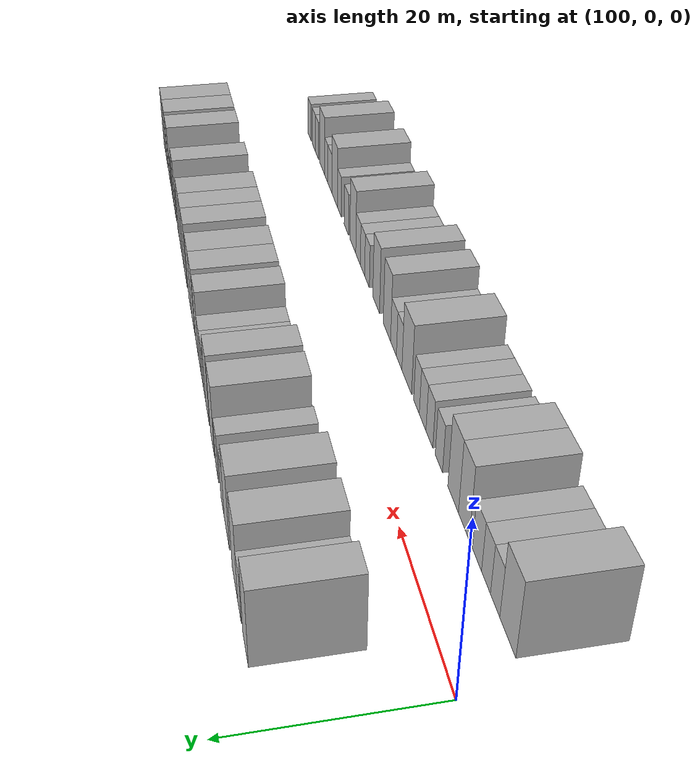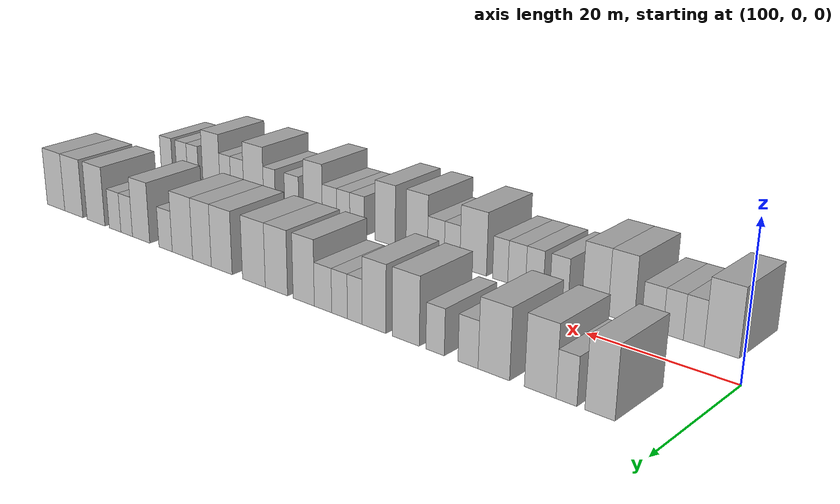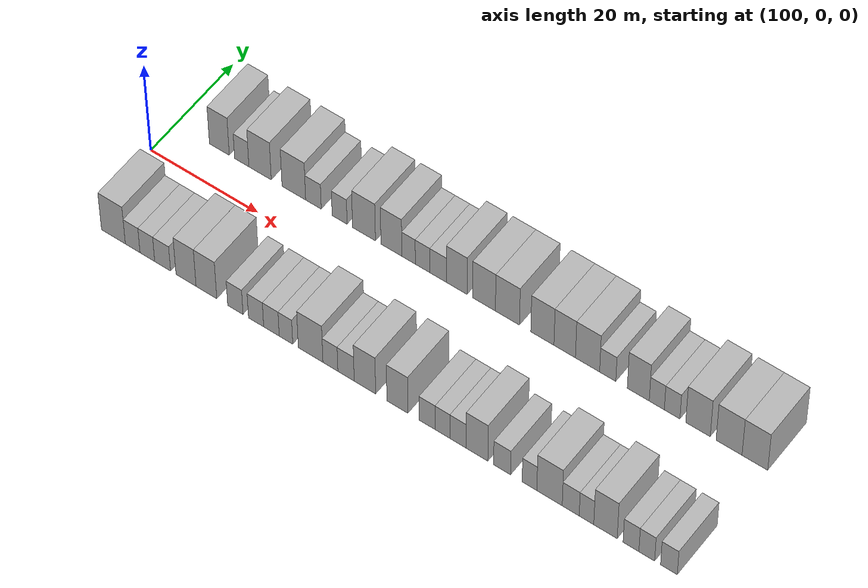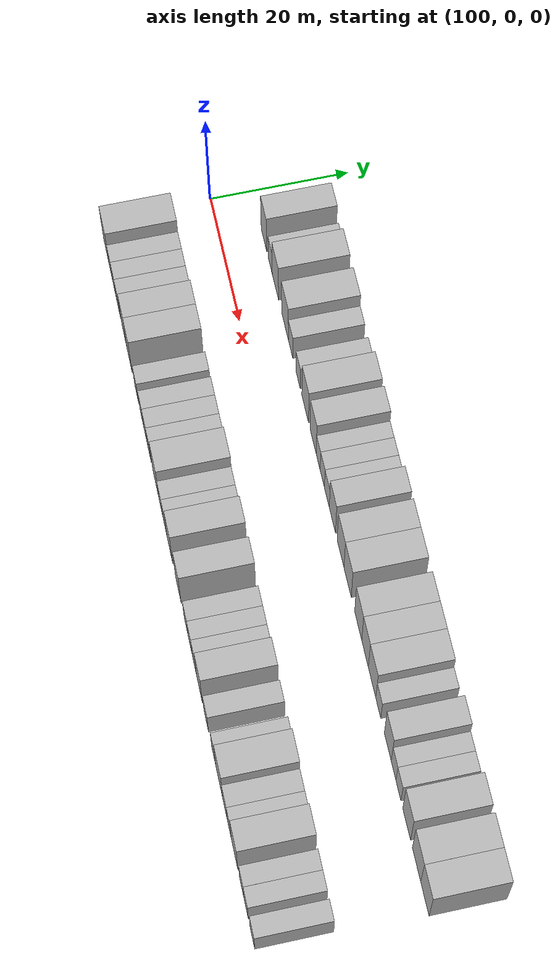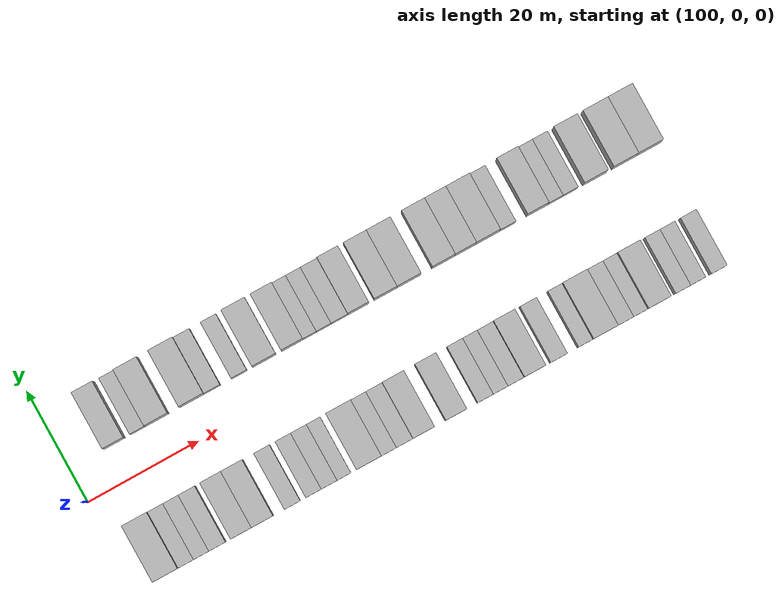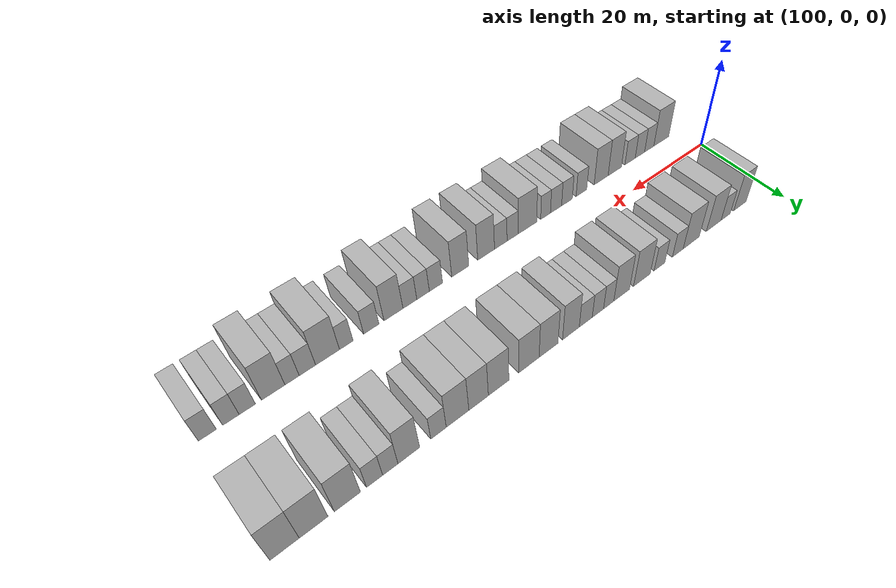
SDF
<sdf version="1.6">
 <world name="default">
  <model name="building_26">
   <static>1</static>
   <pose>108.2186 11.0000 0 0.000000 0.000000 1.570796</pose>
   <link name="link">
    <pose>0 0 4.50 0 0 0</pose>
    <collision name="collision"><geometry><box><size>10.0000 3.7321 9.0000</size></box></geometry></collision>
    <visual name="visual">
     <cast_shadows>0</cast_shadows>
     <geometry><box><size>10.0000 3.7321 9.0000</size></box></geometry>
     <material>
      <script>
       <uri>model://HANNAS_wall/materials/scripts</uri>
       <uri>model://HANNAS_wall/materials/textures</uri>
       <name>vrc/HANNAS_wall</name>
      </script>
     </material>
    </visual>
   </link>
  </model>
  <model name="building_27">
   <static>1</static>
   <pose>112.4197 11.0000 0 0.000000 0.000000 1.570796</pose>
   <link name="link">
    <pose>0 0 3.00 0 0 0</pose>
    <collision name="collision"><geometry><box><size>10.0000 2.6702 6.0000</size></box></geometry></collision>
    <visual name="visual">
     <cast_shadows>0</cast_shadows>
     <geometry><box><size>10.0000 2.6702 6.0000</size></box></geometry>
     <material>
      <script>
       <uri>model://HANNAS_wall/materials/scripts</uri>
       <uri>model://HANNAS_wall/materials/textures</uri>
       <name>vrc/HANNAS_wall</name>
      </script>
     </material>
    </visual>
   </link>
  </model>
  <model name="building_28">
   <static>1</static>
   <pose>115.8451 11.0000 0 0.000000 0.000000 1.570796</pose>
   <link name="link">
    <pose>0 0 4.50 0 0 0</pose>
    <collision name="collision"><geometry><box><size>10.0000 4.1805 9.0000</size></box></geometry></collision>
    <visual name="visual">
     <cast_shadows>0</cast_shadows>
     <geometry><box><size>10.0000 4.1805 9.0000</size></box></geometry>
     <material>
      <script>
       <uri>model://HANNAS_wall/materials/scripts</uri>
       <uri>model://HANNAS_wall/materials/textures</uri>
       <name>vrc/HANNAS_wall</name>
      </script>
     </material>
    </visual>
   </link>
  </model>
  <model name="building_29">
   <static>1</static>
   <pose>122.1310 11.0000 0 0.000000 0.000000 1.570796</pose>
   <link name="link">
    <pose>0 0 4.50 0 0 0</pose>
    <collision name="collision"><geometry><box><size>10.0000 4.3913 9.0000</size></box></geometry></collision>
    <visual name="visual">
     <cast_shadows>0</cast_shadows>
     <geometry><box><size>10.0000 4.3913 9.0000</size></box></geometry>
     <material>
      <script>
       <uri>model://HANNAS_wall/materials/scripts</uri>
       <uri>model://HANNAS_wall/materials/textures</uri>
       <name>vrc/HANNAS_wall</name>
      </script>
     </material>
    </visual>
   </link>
  </model>
  <model name="building_30">
   <static>1</static>
   <pose>125.7709 11.0000 0 0.000000 0.000000 1.570796</pose>
   <link name="link">
    <pose>0 0 3.00 0 0 0</pose>
    <collision name="collision"><geometry><box><size>10.0000 2.8885 6.0000</size></box></geometry></collision>
    <visual name="visual">
     <cast_shadows>0</cast_shadows>
     <geometry><box><size>10.0000 2.8885 6.0000</size></box></geometry>
     <material>
      <script>
       <uri>model://HANNAS_wall/materials/scripts</uri>
       <uri>model://HANNAS_wall/materials/textures</uri>
       <name>vrc/HANNAS_wall</name>
      </script>
     </material>
    </visual>
   </link>
  </model>
  <model name="building_31">
   <static>1</static>
   <pose>130.5953 11.0000 0 0.000000 0.000000 1.570796</pose>
   <link name="link">
    <pose>0 0 3.00 0 0 0</pose>
    <collision name="collision"><geometry><box><size>10.0000 2.7602 6.0000</size></box></geometry></collision>
    <visual name="visual">
     <cast_shadows>0</cast_shadows>
     <geometry><box><size>10.0000 2.7602 6.0000</size></box></geometry>
     <material>
      <script>
       <uri>model://HANNAS_wall/materials/scripts</uri>
       <uri>model://HANNAS_wall/materials/textures</uri>
       <name>vrc/HANNAS_wall</name>
      </script>
     </material>
    </visual>
   </link>
  </model>
  <model name="building_32">
   <static>1</static>
   <pose>135.0744 11.0000 0 0.000000 0.000000 1.570796</pose>
   <link name="link">
    <pose>0 0 4.50 0 0 0</pose>
    <collision name="collision"><geometry><box><size>10.0000 4.1980 9.0000</size></box></geometry></collision>
    <visual name="visual">
     <cast_shadows>0</cast_shadows>
     <geometry><box><size>10.0000 4.1980 9.0000</size></box></geometry>
     <material>
      <script>
       <uri>model://HANNAS_wall/materials/scripts</uri>
       <uri>model://HANNAS_wall/materials/textures</uri>
       <name>vrc/HANNAS_wall</name>
      </script>
     </material>
    </visual>
   </link>
  </model>
  <model name="building_33">
   <static>1</static>
   <pose>140.0849 11.0000 0 0.000000 0.000000 1.570796</pose>
   <link name="link">
    <pose>0 0 4.50 0 0 0</pose>
    <collision name="collision"><geometry><box><size>10.0000 3.8230 9.0000</size></box></geometry></collision>
    <visual name="visual">
     <cast_shadows>0</cast_shadows>
     <geometry><box><size>10.0000 3.8230 9.0000</size></box></geometry>
     <material>
      <script>
       <uri>model://HANNAS_wall/materials/scripts</uri>
       <uri>model://HANNAS_wall/materials/textures</uri>
       <name>vrc/HANNAS_wall</name>
      </script>
     </material>
    </visual>
   </link>
  </model>
  <model name="building_34">
   <static>1</static>
   <pose>143.2163 11.0000 0 0.000000 0.000000 1.570796</pose>
   <link name="link">
    <pose>0 0 3.00 0 0 0</pose>
    <collision name="collision"><geometry><box><size>10.0000 2.4398 6.0000</size></box></geometry></collision>
    <visual name="visual">
     <cast_shadows>0</cast_shadows>
     <geometry><box><size>10.0000 2.4398 6.0000</size></box></geometry>
     <material>
      <script>
       <uri>model://HANNAS_wall/materials/scripts</uri>
       <uri>model://HANNAS_wall/materials/textures</uri>
       <name>vrc/HANNAS_wall</name>
      </script>
     </material>
    </visual>
   </link>
  </model>
  <model name="building_35">
   <static>1</static>
   <pose>145.7542 11.0000 0 0.000000 0.000000 1.570796</pose>
   <link name="link">
    <pose>0 0 3.00 0 0 0</pose>
    <collision name="collision"><geometry><box><size>10.0000 2.6360 6.0000</size></box></geometry></collision>
    <visual name="visual">
     <cast_shadows>0</cast_shadows>
     <geometry><box><size>10.0000 2.6360 6.0000</size></box></geometry>
     <material>
      <script>
       <uri>model://HANNAS_wall/materials/scripts</uri>
       <uri>model://HANNAS_wall/materials/textures</uri>
       <name>vrc/HANNAS_wall</name>
      </script>
     </material>
    </visual>
   </link>
  </model>
  <model name="building_36">
   <static>1</static>
   <pose>148.5625 11.0000 0 0.000000 0.000000 1.570796</pose>
   <link name="link">
    <pose>0 0 3.00 0 0 0</pose>
    <collision name="collision"><geometry><box><size>10.0000 2.9808 6.0000</size></box></geometry></collision>
    <visual name="visual">
     <cast_shadows>0</cast_shadows>
     <geometry><box><size>10.0000 2.9808 6.0000</size></box></geometry>
     <material>
      <script>
       <uri>model://HANNAS_wall/materials/scripts</uri>
       <uri>model://HANNAS_wall/materials/textures</uri>
       <name>vrc/HANNAS_wall</name>
      </script>
     </material>
    </visual>
   </link>
  </model>
  <model name="building_37">
   <static>1</static>
   <pose>151.9201 11.0000 0 0.000000 0.000000 1.570796</pose>
   <link name="link">
    <pose>0 0 4.50 0 0 0</pose>
    <collision name="collision"><geometry><box><size>10.0000 3.7343 9.0000</size></box></geometry></collision>
    <visual name="visual">
     <cast_shadows>0</cast_shadows>
     <geometry><box><size>10.0000 3.7343 9.0000</size></box></geometry>
     <material>
      <script>
       <uri>model://HANNAS_wall/materials/scripts</uri>
       <uri>model://HANNAS_wall/materials/textures</uri>
       <name>vrc/HANNAS_wall</name>
      </script>
     </material>
    </visual>
   </link>
  </model>
  <model name="building_38">
   <static>1</static>
   <pose>156.8226 11.0000 0 0.000000 0.000000 1.570796</pose>
   <link name="link">
    <pose>0 0 4.50 0 0 0</pose>
    <collision name="collision"><geometry><box><size>10.0000 4.0708 9.0000</size></box></geometry></collision>
    <visual name="visual">
     <cast_shadows>0</cast_shadows>
     <geometry><box><size>10.0000 4.0708 9.0000</size></box></geometry>
     <material>
      <script>
       <uri>model://HANNAS_wall/materials/scripts</uri>
       <uri>model://HANNAS_wall/materials/textures</uri>
       <name>vrc/HANNAS_wall</name>
      </script>
     </material>
    </visual>
   </link>
  </model>
  <model name="building_39">
   <static>1</static>
   <pose>161.0073 11.0000 0 0.000000 0.000000 1.570796</pose>
   <link name="link">
    <pose>0 0 4.50 0 0 0</pose>
    <collision name="collision"><geometry><box><size>10.0000 4.2986 9.0000</size></box></geometry></collision>
    <visual name="visual">
     <cast_shadows>0</cast_shadows>
     <geometry><box><size>10.0000 4.2986 9.0000</size></box></geometry>
     <material>
      <script>
       <uri>model://HANNAS_wall/materials/scripts</uri>
       <uri>model://HANNAS_wall/materials/textures</uri>
       <name>vrc/HANNAS_wall</name>
      </script>
     </material>
    </visual>
   </link>
  </model>
  <model name="building_40">
   <static>1</static>
   <pose>167.2111 11.0000 0 0.000000 0.000000 1.570796</pose>
   <link name="link">
    <pose>0 0 4.50 0 0 0</pose>
    <collision name="collision"><geometry><box><size>10.0000 4.1090 9.0000</size></box></geometry></collision>
    <visual name="visual">
     <cast_shadows>0</cast_shadows>
     <geometry><box><size>10.0000 4.1090 9.0000</size></box></geometry>
     <material>
      <script>
       <uri>model://HANNAS_wall/materials/scripts</uri>
       <uri>model://HANNAS_wall/materials/textures</uri>
       <name>vrc/HANNAS_wall</name>
      </script>
     </material>
    </visual>
   </link>
  </model>
  <model name="building_41">
   <static>1</static>
   <pose>171.1604 11.0000 0 0.000000 0.000000 1.570796</pose>
   <link name="link">
    <pose>0 0 4.50 0 0 0</pose>
    <collision name="collision"><geometry><box><size>10.0000 3.7896 9.0000</size></box></geometry></collision>
    <visual name="visual">
     <cast_shadows>0</cast_shadows>
     <geometry><box><size>10.0000 3.7896 9.0000</size></box></geometry>
     <material>
      <script>
       <uri>model://HANNAS_wall/materials/scripts</uri>
       <uri>model://HANNAS_wall/materials/textures</uri>
       <name>vrc/HANNAS_wall</name>
      </script>
     </material>
    </visual>
   </link>
  </model>
  <model name="building_42">
   <static>1</static>
   <pose>175.1834 11.0000 0 0.000000 0.000000 1.570796</pose>
   <link name="link">
    <pose>0 0 4.50 0 0 0</pose>
    <collision name="collision"><geometry><box><size>10.0000 4.2564 9.0000</size></box></geometry></collision>
    <visual name="visual">
     <cast_shadows>0</cast_shadows>
     <geometry><box><size>10.0000 4.2564 9.0000</size></box></geometry>
     <material>
      <script>
       <uri>model://HANNAS_wall/materials/scripts</uri>
       <uri>model://HANNAS_wall/materials/textures</uri>
       <name>vrc/HANNAS_wall</name>
      </script>
     </material>
    </visual>
   </link>
  </model>
  <model name="building_43">
   <static>1</static>
   <pose>178.7309 11.0000 0 0.000000 0.000000 1.570796</pose>
   <link name="link">
    <pose>0 0 3.00 0 0 0</pose>
    <collision name="collision"><geometry><box><size>10.0000 2.8384 6.0000</size></box></geometry></collision>
    <visual name="visual">
     <cast_shadows>0</cast_shadows>
     <geometry><box><size>10.0000 2.8384 6.0000</size></box></geometry>
     <material>
      <script>
       <uri>model://HANNAS_wall/materials/scripts</uri>
       <uri>model://HANNAS_wall/materials/textures</uri>
       <name>vrc/HANNAS_wall</name>
      </script>
     </material>
    </visual>
   </link>
  </model>
  <model name="building_44">
   <static>1</static>
   <pose>184.0636 11.0000 0 0.000000 0.000000 1.570796</pose>
   <link name="link">
    <pose>0 0 4.50 0 0 0</pose>
    <collision name="collision"><geometry><box><size>10.0000 3.8270 9.0000</size></box></geometry></collision>
    <visual name="visual">
     <cast_shadows>0</cast_shadows>
     <geometry><box><size>10.0000 3.8270 9.0000</size></box></geometry>
     <material>
      <script>
       <uri>model://HANNAS_wall/materials/scripts</uri>
       <uri>model://HANNAS_wall/materials/textures</uri>
       <name>vrc/HANNAS_wall</name>
      </script>
     </material>
    </visual>
   </link>
  </model>
  <model name="building_45">
   <static>1</static>
   <pose>187.2848 11.0000 0 0.000000 0.000000 1.570796</pose>
   <link name="link">
    <pose>0 0 3.00 0 0 0</pose>
    <collision name="collision"><geometry><box><size>10.0000 2.6154 6.0000</size></box></geometry></collision>
    <visual name="visual">
     <cast_shadows>0</cast_shadows>
     <geometry><box><size>10.0000 2.6154 6.0000</size></box></geometry>
     <material>
      <script>
       <uri>model://HANNAS_wall/materials/scripts</uri>
       <uri>model://HANNAS_wall/materials/textures</uri>
       <name>vrc/HANNAS_wall</name>
      </script>
     </material>
    </visual>
   </link>
  </model>
  <model name="building_46">
   <static>1</static>
   <pose>189.9459 11.0000 0 0.000000 0.000000 1.570796</pose>
   <link name="link">
    <pose>0 0 3.00 0 0 0</pose>
    <collision name="collision"><geometry><box><size>10.0000 2.7069 6.0000</size></box></geometry></collision>
    <visual name="visual">
     <cast_shadows>0</cast_shadows>
     <geometry><box><size>10.0000 2.7069 6.0000</size></box></geometry>
     <material>
      <script>
       <uri>model://HANNAS_wall/materials/scripts</uri>
       <uri>model://HANNAS_wall/materials/textures</uri>
       <name>vrc/HANNAS_wall</name>
      </script>
     </material>
    </visual>
   </link>
  </model>
  <model name="building_47">
   <static>1</static>
   <pose>194.4115 11.0000 0 0.000000 0.000000 1.570796</pose>
   <link name="link">
    <pose>0 0 4.50 0 0 0</pose>
    <collision name="collision"><geometry><box><size>10.0000 4.2243 9.0000</size></box></geometry></collision>
    <visual name="visual">
     <cast_shadows>0</cast_shadows>
     <geometry><box><size>10.0000 4.2243 9.0000</size></box></geometry>
     <material>
      <script>
       <uri>model://HANNAS_wall/materials/scripts</uri>
       <uri>model://HANNAS_wall/materials/textures</uri>
       <name>vrc/HANNAS_wall</name>
      </script>
     </material>
    </visual>
   </link>
  </model>
  <model name="building_48">
   <static>1</static>
   <pose>199.7495 11.0000 0 0.000000 0.000000 1.570796</pose>
   <link name="link">
    <pose>0 0 4.50 0 0 0</pose>
    <collision name="collision"><geometry><box><size>10.0000 4.4517 9.0000</size></box></geometry></collision>
    <visual name="visual">
     <cast_shadows>0</cast_shadows>
     <geometry><box><size>10.0000 4.4517 9.0000</size></box></geometry>
     <material>
      <script>
       <uri>model://HANNAS_wall/materials/scripts</uri>
       <uri>model://HANNAS_wall/materials/textures</uri>
       <name>vrc/HANNAS_wall</name>
      </script>
     </material>
    </visual>
   </link>
  </model>
  <model name="building_49">
   <static>1</static>
   <pose>204.1674 11.0000 0 0.000000 0.000000 1.570796</pose>
   <link name="link">
    <pose>0 0 4.50 0 0 0</pose>
    <collision name="collision"><geometry><box><size>10.0000 4.3839 9.0000</size></box></geometry></collision>
    <visual name="visual">
     <cast_shadows>0</cast_shadows>
     <geometry><box><size>10.0000 4.3839 9.0000</size></box></geometry>
     <material>
      <script>
       <uri>model://HANNAS_wall/materials/scripts</uri>
       <uri>model://HANNAS_wall/materials/textures</uri>
       <name>vrc/HANNAS_wall</name>
      </script>
     </material>
    </visual>
   </link>
  </model>
  <model name="building_76">
   <static>1</static>
   <pose>105.4344 -11.0000 0 0.000000 0.000000 1.570796</pose>
   <link name="link">
    <pose>0 0 4.50 0 0 0</pose>
    <collision name="collision"><geometry><box><size>10.0000 4.4679 9.0000</size></box></geometry></collision>
    <visual name="visual">
     <cast_shadows>0</cast_shadows>
     <geometry><box><size>10.0000 4.4679 9.0000</size></box></geometry>
     <material>
      <script>
       <uri>model://HANNAS_wall/materials/scripts</uri>
       <uri>model://HANNAS_wall/materials/textures</uri>
       <name>vrc/HANNAS_wall</name>
      </script>
     </material>
    </visual>
   </link>
  </model>
  <model name="building_77">
   <static>1</static>
   <pose>109.0400 -11.0000 0 0.000000 0.000000 1.570796</pose>
   <link name="link">
    <pose>0 0 3.00 0 0 0</pose>
    <collision name="collision"><geometry><box><size>10.0000 2.7435 6.0000</size></box></geometry></collision>
    <visual name="visual">
     <cast_shadows>0</cast_shadows>
     <geometry><box><size>10.0000 2.7435 6.0000</size></box></geometry>
     <material>
      <script>
       <uri>model://HANNAS_wall/materials/scripts</uri>
       <uri>model://HANNAS_wall/materials/textures</uri>
       <name>vrc/HANNAS_wall</name>
      </script>
     </material>
    </visual>
   </link>
  </model>
  <model name="building_78">
   <static>1</static>
   <pose>111.7783 -11.0000 0 0.000000 0.000000 1.570796</pose>
   <link name="link">
    <pose>0 0 3.00 0 0 0</pose>
    <collision name="collision"><geometry><box><size>10.0000 2.7330 6.0000</size></box></geometry></collision>
    <visual name="visual">
     <cast_shadows>0</cast_shadows>
     <geometry><box><size>10.0000 2.7330 6.0000</size></box></geometry>
     <material>
      <script>
       <uri>model://HANNAS_wall/materials/scripts</uri>
       <uri>model://HANNAS_wall/materials/textures</uri>
       <name>vrc/HANNAS_wall</name>
      </script>
     </material>
    </visual>
   </link>
  </model>
  <model name="building_79">
   <static>1</static>
   <pose>114.6208 -11.0000 0 0.000000 0.000000 1.570796</pose>
   <link name="link">
    <pose>0 0 3.00 0 0 0</pose>
    <collision name="collision"><geometry><box><size>10.0000 2.9521 6.0000</size></box></geometry></collision>
    <visual name="visual">
     <cast_shadows>0</cast_shadows>
     <geometry><box><size>10.0000 2.9521 6.0000</size></box></geometry>
     <material>
      <script>
       <uri>model://HANNAS_wall/materials/scripts</uri>
       <uri>model://HANNAS_wall/materials/textures</uri>
       <name>vrc/HANNAS_wall</name>
      </script>
     </material>
    </visual>
   </link>
  </model>
  <model name="building_80">
   <static>1</static>
   <pose>118.9534 -11.0000 0 0.000000 0.000000 1.570796</pose>
   <link name="link">
    <pose>0 0 4.50 0 0 0</pose>
    <collision name="collision"><geometry><box><size>10.0000 3.7133 9.0000</size></box></geometry></collision>
    <visual name="visual">
     <cast_shadows>0</cast_shadows>
     <geometry><box><size>10.0000 3.7133 9.0000</size></box></geometry>
     <material>
      <script>
       <uri>model://HANNAS_wall/materials/scripts</uri>
       <uri>model://HANNAS_wall/materials/textures</uri>
       <name>vrc/HANNAS_wall</name>
      </script>
     </material>
    </visual>
   </link>
  </model>
  <model name="building_81">
   <static>1</static>
   <pose>122.7202 -11.0000 0 0.000000 0.000000 1.570796</pose>
   <link name="link">
    <pose>0 0 4.50 0 0 0</pose>
    <collision name="collision"><geometry><box><size>10.0000 3.8201 9.0000</size></box></geometry></collision>
    <visual name="visual">
     <cast_shadows>0</cast_shadows>
     <geometry><box><size>10.0000 3.8201 9.0000</size></box></geometry>
     <material>
      <script>
       <uri>model://HANNAS_wall/materials/scripts</uri>
       <uri>model://HANNAS_wall/materials/textures</uri>
       <name>vrc/HANNAS_wall</name>
      </script>
     </material>
    </visual>
   </link>
  </model>
  <model name="building_82">
   <static>1</static>
   <pose>128.0372 -11.0000 0 0.000000 0.000000 1.570796</pose>
   <link name="link">
    <pose>0 0 3.00 0 0 0</pose>
    <collision name="collision"><geometry><box><size>10.0000 2.8138 6.0000</size></box></geometry></collision>
    <visual name="visual">
     <cast_shadows>0</cast_shadows>
     <geometry><box><size>10.0000 2.8138 6.0000</size></box></geometry>
     <material>
      <script>
       <uri>model://HANNAS_wall/materials/scripts</uri>
       <uri>model://HANNAS_wall/materials/textures</uri>
       <name>vrc/HANNAS_wall</name>
      </script>
     </material>
    </visual>
   </link>
  </model>
  <model name="building_83">
   <static>1</static>
   <pose>131.8249 -11.0000 0 0.000000 0.000000 1.570796</pose>
   <link name="link">
    <pose>0 0 3.00 0 0 0</pose>
    <collision name="collision"><geometry><box><size>10.0000 2.7617 6.0000</size></box></geometry></collision>
    <visual name="visual">
     <cast_shadows>0</cast_shadows>
     <geometry><box><size>10.0000 2.7617 6.0000</size></box></geometry>
     <material>
      <script>
       <uri>model://HANNAS_wall/materials/scripts</uri>
       <uri>model://HANNAS_wall/materials/textures</uri>
       <name>vrc/HANNAS_wall</name>
      </script>
     </material>
    </visual>
   </link>
  </model>
  <model name="building_84">
   <static>1</static>
   <pose>134.6211 -11.0000 0 0.000000 0.000000 1.570796</pose>
   <link name="link">
    <pose>0 0 3.00 0 0 0</pose>
    <collision name="collision"><geometry><box><size>10.0000 2.8305 6.0000</size></box></geometry></collision>
    <visual name="visual">
     <cast_shadows>0</cast_shadows>
     <geometry><box><size>10.0000 2.8305 6.0000</size></box></geometry>
     <material>
      <script>
       <uri>model://HANNAS_wall/materials/scripts</uri>
       <uri>model://HANNAS_wall/materials/textures</uri>
       <name>vrc/HANNAS_wall</name>
      </script>
     </material>
    </visual>
   </link>
  </model>
  <model name="building_85">
   <static>1</static>
   <pose>137.2659 -11.0000 0 0.000000 0.000000 1.570796</pose>
   <link name="link">
    <pose>0 0 3.00 0 0 0</pose>
    <collision name="collision"><geometry><box><size>10.0000 2.4590 6.0000</size></box></geometry></collision>
    <visual name="visual">
     <cast_shadows>0</cast_shadows>
     <geometry><box><size>10.0000 2.4590 6.0000</size></box></geometry>
     <material>
      <script>
       <uri>model://HANNAS_wall/materials/scripts</uri>
       <uri>model://HANNAS_wall/materials/textures</uri>
       <name>vrc/HANNAS_wall</name>
      </script>
     </material>
    </visual>
   </link>
  </model>
  <model name="building_86">
   <static>1</static>
   <pose>141.7210 -11.0000 0 0.000000 0.000000 1.570796</pose>
   <link name="link">
    <pose>0 0 4.50 0 0 0</pose>
    <collision name="collision"><geometry><box><size>10.0000 4.4512 9.0000</size></box></geometry></collision>
    <visual name="visual">
     <cast_shadows>0</cast_shadows>
     <geometry><box><size>10.0000 4.4512 9.0000</size></box></geometry>
     <material>
      <script>
       <uri>model://HANNAS_wall/materials/scripts</uri>
       <uri>model://HANNAS_wall/materials/textures</uri>
       <name>vrc/HANNAS_wall</name>
      </script>
     </material>
    </visual>
   </link>
  </model>
  <model name="building_87">
   <static>1</static>
   <pose>145.2903 -11.0000 0 0.000000 0.000000 1.570796</pose>
   <link name="link">
    <pose>0 0 3.00 0 0 0</pose>
    <collision name="collision"><geometry><box><size>10.0000 2.6874 6.0000</size></box></geometry></collision>
    <visual name="visual">
     <cast_shadows>0</cast_shadows>
     <geometry><box><size>10.0000 2.6874 6.0000</size></box></geometry>
     <material>
      <script>
       <uri>model://HANNAS_wall/materials/scripts</uri>
       <uri>model://HANNAS_wall/materials/textures</uri>
       <name>vrc/HANNAS_wall</name>
      </script>
     </material>
    </visual>
   </link>
  </model>
  <model name="building_88">
   <static>1</static>
   <pose>148.1000 -11.0000 0 0.000000 0.000000 1.570796</pose>
   <link name="link">
    <pose>0 0 3.00 0 0 0</pose>
    <collision name="collision"><geometry><box><size>10.0000 2.9320 6.0000</size></box></geometry></collision>
    <visual name="visual">
     <cast_shadows>0</cast_shadows>
     <geometry><box><size>10.0000 2.9320 6.0000</size></box></geometry>
     <material>
      <script>
       <uri>model://HANNAS_wall/materials/scripts</uri>
       <uri>model://HANNAS_wall/materials/textures</uri>
       <name>vrc/HANNAS_wall</name>
      </script>
     </material>
    </visual>
   </link>
  </model>
  <model name="building_89">
   <static>1</static>
   <pose>151.4865 -11.0000 0 0.000000 0.000000 1.570796</pose>
   <link name="link">
    <pose>0 0 4.50 0 0 0</pose>
    <collision name="collision"><geometry><box><size>10.0000 3.8410 9.0000</size></box></geometry></collision>
    <visual name="visual">
     <cast_shadows>0</cast_shadows>
     <geometry><box><size>10.0000 3.8410 9.0000</size></box></geometry>
     <material>
      <script>
       <uri>model://HANNAS_wall/materials/scripts</uri>
       <uri>model://HANNAS_wall/materials/textures</uri>
       <name>vrc/HANNAS_wall</name>
      </script>
     </material>
    </visual>
   </link>
  </model>
  <model name="building_90">
   <static>1</static>
   <pose>157.2829 -11.0000 0 0.000000 0.000000 1.570796</pose>
   <link name="link">
    <pose>0 0 4.50 0 0 0</pose>
    <collision name="collision"><geometry><box><size>10.0000 3.7519 9.0000</size></box></geometry></collision>
    <visual name="visual">
     <cast_shadows>0</cast_shadows>
     <geometry><box><size>10.0000 3.7519 9.0000</size></box></geometry>
     <material>
      <script>
       <uri>model://HANNAS_wall/materials/scripts</uri>
       <uri>model://HANNAS_wall/materials/textures</uri>
       <name>vrc/HANNAS_wall</name>
      </script>
     </material>
    </visual>
   </link>
  </model>
  <model name="building_91">
   <static>1</static>
   <pose>162.5575 -11.0000 0 0.000000 0.000000 1.570796</pose>
   <link name="link">
    <pose>0 0 3.00 0 0 0</pose>
    <collision name="collision"><geometry><box><size>10.0000 2.7974 6.0000</size></box></geometry></collision>
    <visual name="visual">
     <cast_shadows>0</cast_shadows>
     <geometry><box><size>10.0000 2.7974 6.0000</size></box></geometry>
     <material>
      <script>
       <uri>model://HANNAS_wall/materials/scripts</uri>
       <uri>model://HANNAS_wall/materials/textures</uri>
       <name>vrc/HANNAS_wall</name>
      </script>
     </material>
    </visual>
   </link>
  </model>
  <model name="building_92">
   <static>1</static>
   <pose>165.2628 -11.0000 0 0.000000 0.000000 1.570796</pose>
   <link name="link">
    <pose>0 0 3.00 0 0 0</pose>
    <collision name="collision"><geometry><box><size>10.0000 2.6133 6.0000</size></box></geometry></collision>
    <visual name="visual">
     <cast_shadows>0</cast_shadows>
     <geometry><box><size>10.0000 2.6133 6.0000</size></box></geometry>
     <material>
      <script>
       <uri>model://HANNAS_wall/materials/scripts</uri>
       <uri>model://HANNAS_wall/materials/textures</uri>
       <name>vrc/HANNAS_wall</name>
      </script>
     </material>
    </visual>
   </link>
  </model>
  <model name="building_93">
   <static>1</static>
   <pose>167.9934 -11.0000 0 0.000000 0.000000 1.570796</pose>
   <link name="link">
    <pose>0 0 3.00 0 0 0</pose>
    <collision name="collision"><geometry><box><size>10.0000 2.8477 6.0000</size></box></geometry></collision>
    <visual name="visual">
     <cast_shadows>0</cast_shadows>
     <geometry><box><size>10.0000 2.8477 6.0000</size></box></geometry>
     <material>
      <script>
       <uri>model://HANNAS_wall/materials/scripts</uri>
       <uri>model://HANNAS_wall/materials/textures</uri>
       <name>vrc/HANNAS_wall</name>
      </script>
     </material>
    </visual>
   </link>
  </model>
  <model name="building_94">
   <static>1</static>
   <pose>171.3198 -11.0000 0 0.000000 0.000000 1.570796</pose>
   <link name="link">
    <pose>0 0 4.50 0 0 0</pose>
    <collision name="collision"><geometry><box><size>10.0000 3.8052 9.0000</size></box></geometry></collision>
    <visual name="visual">
     <cast_shadows>0</cast_shadows>
     <geometry><box><size>10.0000 3.8052 9.0000</size></box></geometry>
     <material>
      <script>
       <uri>model://HANNAS_wall/materials/scripts</uri>
       <uri>model://HANNAS_wall/materials/textures</uri>
       <name>vrc/HANNAS_wall</name>
      </script>
     </material>
    </visual>
   </link>
  </model>
  <model name="building_95">
   <static>1</static>
   <pose>175.7077 -11.0000 0 0.000000 0.000000 1.570796</pose>
   <link name="link">
    <pose>0 0 3.00 0 0 0</pose>
    <collision name="collision"><geometry><box><size>10.0000 2.9706 6.0000</size></box></geometry></collision>
    <visual name="visual">
     <cast_shadows>0</cast_shadows>
     <geometry><box><size>10.0000 2.9706 6.0000</size></box></geometry>
     <material>
      <script>
       <uri>model://HANNAS_wall/materials/scripts</uri>
       <uri>model://HANNAS_wall/materials/textures</uri>
       <name>vrc/HANNAS_wall</name>
      </script>
     </material>
    </visual>
   </link>
  </model>
  <model name="building_96">
   <static>1</static>
   <pose>180.4644 -11.0000 0 0.000000 0.000000 1.570796</pose>
   <link name="link">
    <pose>0 0 3.00 0 0 0</pose>
    <collision name="collision"><geometry><box><size>10.0000 2.5429 6.0000</size></box></geometry></collision>
    <visual name="visual">
     <cast_shadows>0</cast_shadows>
     <geometry><box><size>10.0000 2.5429 6.0000</size></box></geometry>
     <material>
      <script>
       <uri>model://HANNAS_wall/materials/scripts</uri>
       <uri>model://HANNAS_wall/materials/textures</uri>
       <name>vrc/HANNAS_wall</name>
      </script>
     </material>
    </visual>
   </link>
  </model>
  <model name="building_97">
   <static>1</static>
   <pose>183.9309 -11.0000 0 0.000000 0.000000 1.570796</pose>
   <link name="link">
    <pose>0 0 4.50 0 0 0</pose>
    <collision name="collision"><geometry><box><size>10.0000 4.3900 9.0000</size></box></geometry></collision>
    <visual name="visual">
     <cast_shadows>0</cast_shadows>
     <geometry><box><size>10.0000 4.3900 9.0000</size></box></geometry>
     <material>
      <script>
       <uri>model://HANNAS_wall/materials/scripts</uri>
       <uri>model://HANNAS_wall/materials/textures</uri>
       <name>vrc/HANNAS_wall</name>
      </script>
     </material>
    </visual>
   </link>
  </model>
  <model name="building_98">
   <static>1</static>
   <pose>187.5890 -11.0000 0 0.000000 0.000000 1.570796</pose>
   <link name="link">
    <pose>0 0 3.00 0 0 0</pose>
    <collision name="collision"><geometry><box><size>10.0000 2.9262 6.0000</size></box></geometry></collision>
    <visual name="visual">
     <cast_shadows>0</cast_shadows>
     <geometry><box><size>10.0000 2.9262 6.0000</size></box></geometry>
     <material>
      <script>
       <uri>model://HANNAS_wall/materials/scripts</uri>
       <uri>model://HANNAS_wall/materials/textures</uri>
       <name>vrc/HANNAS_wall</name>
      </script>
     </material>
    </visual>
   </link>
  </model>
  <model name="building_99">
   <static>1</static>
   <pose>190.3016 -11.0000 0 0.000000 0.000000 1.570796</pose>
   <link name="link">
    <pose>0 0 3.00 0 0 0</pose>
    <collision name="collision"><geometry><box><size>10.0000 2.4990 6.0000</size></box></geometry></collision>
    <visual name="visual">
     <cast_shadows>0</cast_shadows>
     <geometry><box><size>10.0000 2.4990 6.0000</size></box></geometry>
     <material>
      <script>
       <uri>model://HANNAS_wall/materials/scripts</uri>
       <uri>model://HANNAS_wall/materials/textures</uri>
       <name>vrc/HANNAS_wall</name>
      </script>
     </material>
    </visual>
   </link>
  </model>
  <model name="building_100">
   <static>1</static>
   <pose>193.5568 -11.0000 0 0.000000 0.000000 1.570796</pose>
   <link name="link">
    <pose>0 0 4.50 0 0 0</pose>
    <collision name="collision"><geometry><box><size>10.0000 4.0116 9.0000</size></box></geometry></collision>
    <visual name="visual">
     <cast_shadows>0</cast_shadows>
     <geometry><box><size>10.0000 4.0116 9.0000</size></box></geometry>
     <material>
      <script>
       <uri>model://HANNAS_wall/materials/scripts</uri>
       <uri>model://HANNAS_wall/materials/textures</uri>
       <name>vrc/HANNAS_wall</name>
      </script>
     </material>
    </visual>
   </link>
  </model>
  <model name="building_101">
   <static>1</static>
   <pose>197.9099 -11.0000 0 0.000000 0.000000 1.570796</pose>
   <link name="link">
    <pose>0 0 3.00 0 0 0</pose>
    <collision name="collision"><geometry><box><size>10.0000 2.6946 6.0000</size></box></geometry></collision>
    <visual name="visual">
     <cast_shadows>0</cast_shadows>
     <geometry><box><size>10.0000 2.6946 6.0000</size></box></geometry>
     <material>
      <script>
       <uri>model://HANNAS_wall/materials/scripts</uri>
       <uri>model://HANNAS_wall/materials/textures</uri>
       <name>vrc/HANNAS_wall</name>
      </script>
     </material>
    </visual>
   </link>
  </model>
  <model name="building_102">
   <static>1</static>
   <pose>200.5948 -11.0000 0 0.000000 0.000000 1.570796</pose>
   <link name="link">
    <pose>0 0 3.00 0 0 0</pose>
    <collision name="collision"><geometry><box><size>10.0000 2.6751 6.0000</size></box></geometry></collision>
    <visual name="visual">
     <cast_shadows>0</cast_shadows>
     <geometry><box><size>10.0000 2.6751 6.0000</size></box></geometry>
     <material>
      <script>
       <uri>model://HANNAS_wall/materials/scripts</uri>
       <uri>model://HANNAS_wall/materials/textures</uri>
       <name>vrc/HANNAS_wall</name>
      </script>
     </material>
    </visual>
   </link>
  </model>
  <model name="building_103">
   <static>1</static>
   <pose>204.3486 -11.0000 0 0.000000 0.000000 1.570796</pose>
   <link name="link">
    <pose>0 0 3.00 0 0 0</pose>
    <collision name="collision"><geometry><box><size>10.0000 2.8324 6.0000</size></box></geometry></collision>
    <visual name="visual">
     <cast_shadows>0</cast_shadows>
     <geometry><box><size>10.0000 2.8324 6.0000</size></box></geometry>
     <material>
      <script>
       <uri>model://HANNAS_wall/materials/scripts</uri>
       <uri>model://HANNAS_wall/materials/textures</uri>
       <name>vrc/HANNAS_wall</name>
      </script>
     </material>
    </visual>
   </link>
  </model>
 </world>
</sdf>
